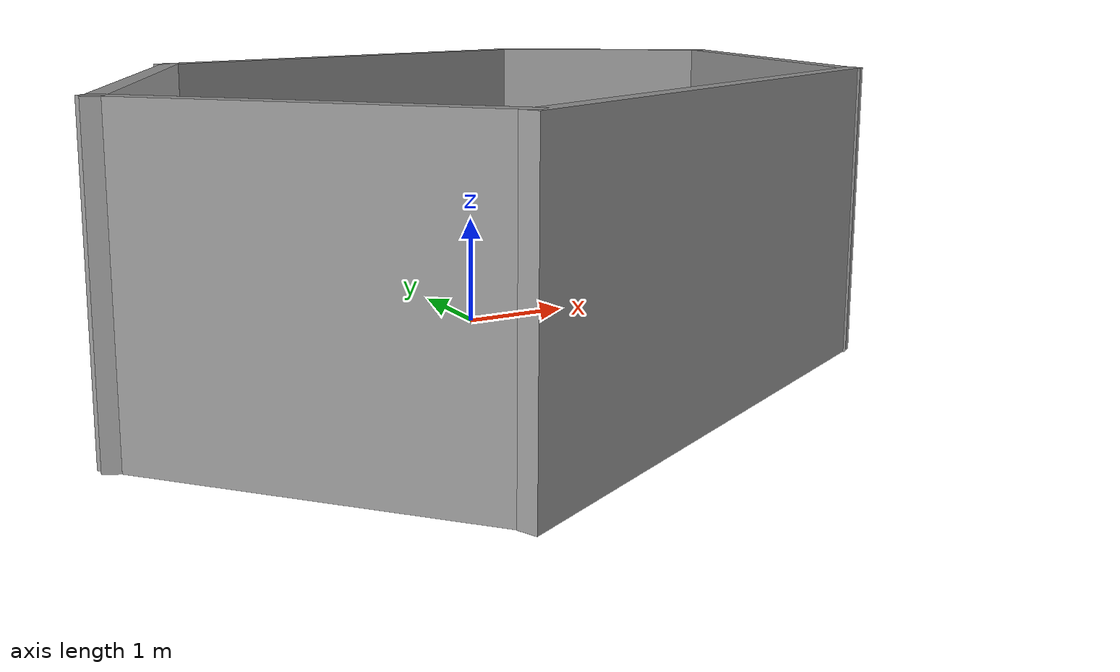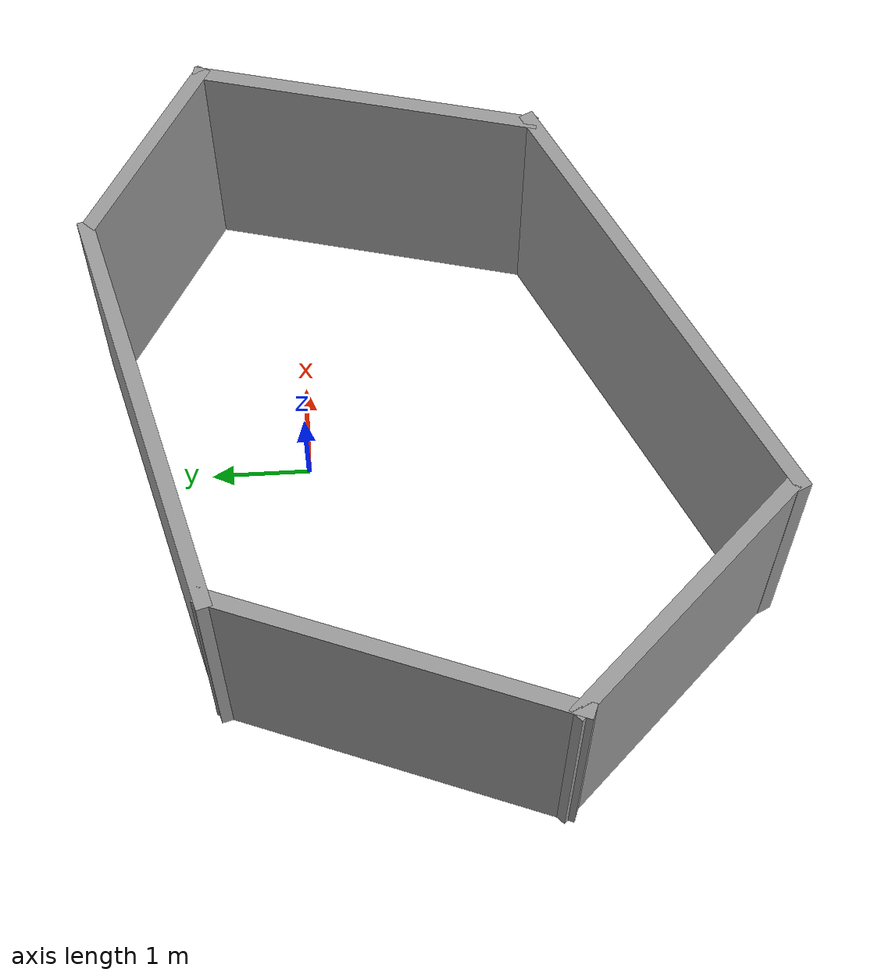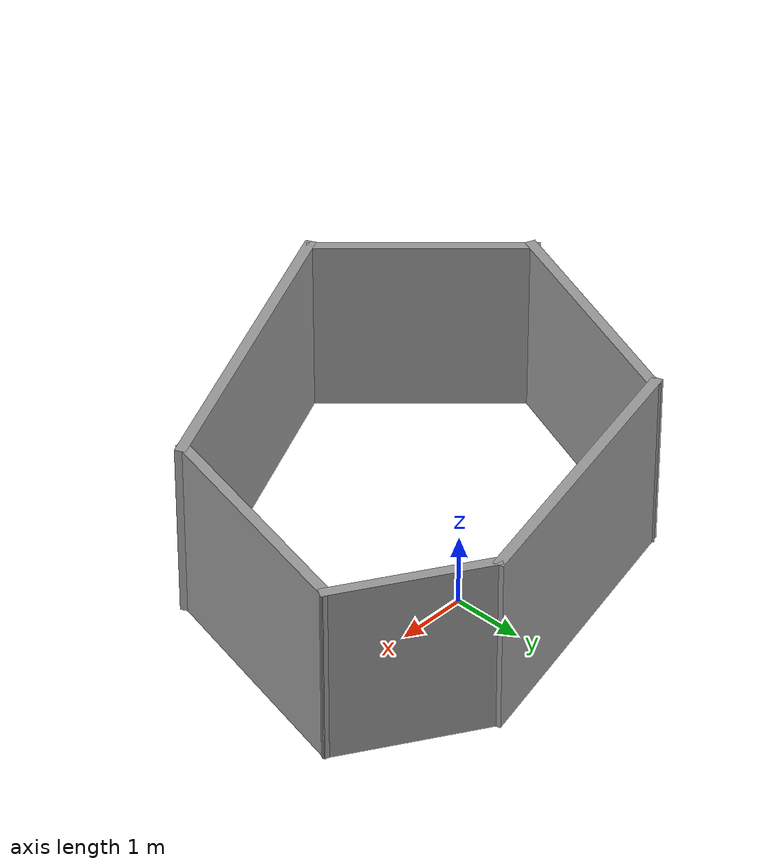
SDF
<?xml version='1.0'?>
<sdf version='1.6'>
  <model name='convex_world'>
    <pose frame=''>-0.285519 -1.22563 0 0 -0 0</pose>
    <link name='Wall_0'>
      <collision name='Wall_0_Collision'>
        <geometry>
          <box>
            <size>3.55529 0.15 2.5</size>
          </box>
        </geometry>
        <pose frame=''>0 0 1.25 0 -0 0</pose>
      </collision>
      <visual name='Wall_0_Visual'>
        <pose frame=''>0 0 1.25 0 -0 0</pose>
        <geometry>
          <box>
            <size>3.55529 0.15 2.5</size>
          </box>
        </geometry>
        <material>
          <script>
            <uri>file://media/materials/scripts/gazebo.material</uri>
            <name>Gazebo/Grey</name>
          </script>
          <ambient>1 1 1 1</ambient>
        </material>
        <meta>
          <layer>0</layer>
        </meta>
      </visual>
      <pose frame=''>-2.91557 0.507519 0 0 -0 -1.94011</pose>
    </link>
    <link name='Wall_1'>
      <collision name='Wall_1_Collision'>
        <geometry>
          <box>
            <size>3.06823 0.15 2.5</size>
          </box>
        </geometry>
        <pose frame=''>0 0 1.25 0 -0 0</pose>
      </collision>
      <visual name='Wall_1_Visual'>
        <pose frame=''>0 0 1.25 0 -0 0</pose>
        <geometry>
          <box>
            <size>3.06823 0.15 2.5</size>
          </box>
        </geometry>
        <material>
          <script>
            <uri>file://media/materials/scripts/gazebo.material</uri>
            <name>Gazebo/Grey</name>
          </script>
          <ambient>1 1 1 1</ambient>
        </material>
        <meta>
          <layer>0</layer>
        </meta>
      </visual>
      <pose frame=''>-2.51716 -2.08395 0 0 -0 -0.803395</pose>
    </link>
    <link name='Wall_2'>
      <collision name='Wall_2_Collision'>
        <geometry>
          <box>
            <size>4.85168 0.15 2.5</size>
          </box>
        </geometry>
        <pose frame=''>0 0 1.25 0 -0 0</pose>
      </collision>
      <visual name='Wall_2_Visual'>
        <pose frame=''>0 0 1.25 0 -0 0</pose>
        <geometry>
          <box>
            <size>4.85168 0.15 2.5</size>
          </box>
        </geometry>
        <material>
          <script>
            <uri>file://media/materials/scripts/gazebo.material</uri>
            <name>Gazebo/Grey</name>
          </script>
          <ambient>1 1 1 1</ambient>
        </material>
        <meta>
          <layer>0</layer>
        </meta>
      </visual>
      <pose frame=''>0.617277 -2.1677 0 0 -0 0.445468</pose>
    </link>
    <link name='Wall_3'>
      <collision name='Wall_3_Collision'>
        <geometry>
          <box>
            <size>3.50715 0.15 2.5</size>
          </box>
        </geometry>
        <pose frame=''>0 0 1.25 0 -0 0</pose>
      </collision>
      <visual name='Wall_3_Visual'>
        <pose frame=''>0 0 1.25 0 -0 0</pose>
        <geometry>
          <box>
            <size>3.50715 0.15 2.5</size>
          </box>
        </geometry>
        <material>
          <script>
            <uri>file://media/materials/scripts/gazebo.material</uri>
            <name>Gazebo/Grey</name>
          </script>
          <ambient>1 1 1 1</ambient>
        </material>
        <meta>
          <layer>0</layer>
        </meta>
      </visual>
      <pose frame=''>3.11864 0.47167 0 0 -0 1.32089</pose>
    </link>
    <link name='Wall_4'>
      <collision name='Wall_4_Collision'>
        <geometry>
          <box>
            <size>2.25 0.15 2.5</size>
          </box>
        </geometry>
        <pose frame=''>0 0 1.25 0 -0 0</pose>
      </collision>
      <visual name='Wall_4_Visual'>
        <pose frame=''>0 0 1.25 0 -0 0</pose>
        <geometry>
          <box>
            <size>2.25 0.15 2.5</size>
          </box>
        </geometry>
        <material>
          <script>
            <uri>file://media/materials/scripts/gazebo.material</uri>
            <name>Gazebo/Grey</name>
          </script>
          <ambient>1 1 1 1</ambient>
        </material>
        <meta>
          <layer>0</layer>
        </meta>
      </visual>
      <pose frame=''>2.62445 2.6231 0 0 -0 2.61799</pose>
    </link>
    <link name='Wall_5'>
      <collision name='Wall_5_Collision'>
        <geometry>
          <box>
            <size>4.3122 0.15 2.5</size>
          </box>
        </geometry>
        <pose frame=''>0 0 1.25 0 -0 0</pose>
      </collision>
      <visual name='Wall_5_Visual'>
        <pose frame=''>0 0 1.25 0 -0 0</pose>
        <geometry>
          <box>
            <size>4.3122 0.15 2.5</size>
          </box>
        </geometry>
        <material>
          <script>
            <uri>file://media/materials/scripts/gazebo.material</uri>
            <name>Gazebo/Grey</name>
          </script>
          <ambient>1 1 1 1</ambient>
        </material>
        <meta>
          <layer>0</layer>
        </meta>
      </visual>
      <pose frame=''>-0.333375 2.64196 0 0 -0 -2.87583</pose>
    </link>
    <static>1</static>
  </model>
</sdf>
